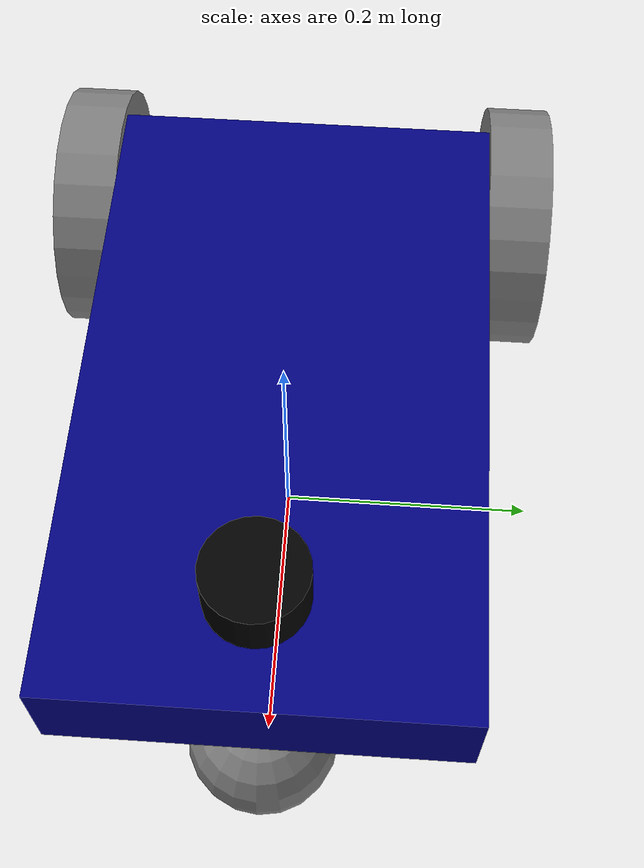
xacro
<?xml version="1.0"?>
<robot xmlns:xacro="http://www.ros.org/wiki/xacro" name="ercole">

    <xacro:arg name="prefix" default=""/>

    <xacro:arg name="model" default=""/>

    <xacro:arg name="use_gazebo" default="true"/>
    <xacro:arg name="use_fake_components" default="true"/>
    <xacro:arg name="use_fixed_wheels" default="true"/>
    <xacro:arg name="use_ros_control" default="true"/>

    <xacro:include filename="common_properties.xacro" />
    <xacro:include filename="mobile_base.xacro" />
    <xacro:include filename="lidar.xacro" />

    <xacro:include filename="ercole.gazebo.xacro" />

    <!-- Import Ercole ros2_control description  -->
    <xacro:include filename="ercole.ros2_control.xacro" />

    <xacro:if value="$(arg use_gazebo)">
        <xacro:ercole_gazebo model="$(arg model)" prefix="$(arg prefix)" />
    </xacro:if>

    <xacro:if value="$(arg use_ros_control)">
        <xacro:ercole_ros2_control model="$(arg model)" prefix="$(arg prefix)"/>
    </xacro:if>

</robot>

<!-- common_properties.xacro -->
<robot xmlns:xacro="http://www.ros.org/wiki/xacro">

    <material name="grey">
        <color rgba="0.5 0.5 0.5 1" />
    </material>

    <material name="blue">
        <color rgba="0 0 0.5 1" />
    </material>

    <material name="black">
        <color rgba="0 0 0 1" />
    </material>

    <xacro:macro name="box_inertia" params="m l w h xyz rpy">
        <inertial>
            <origin xyz="${xyz}" rpy="${rpy}" />
            <mass value="${m}" />
            <inertia ixx="${(m/12) * (h*h + l*l)}" ixy="0" ixz="0"
                     iyy="${(m/12) * (w*w + l*l)}" iyz="0"
                     izz="${(m/12) * (w*w + h*h)}" />

        </inertial>
    </xacro:macro>

    <xacro:macro name="cylinder_inertia" params="m r h xyz rpy">
        <inertial>
            <origin xyz="${xyz}" rpy="${rpy}" />
            <mass value="${m}" />
            <inertia ixx="${(m/12) * (3*r*r + h*h)}" ixy="0" ixz="0"
                      iyy="${(m/12) * (3*r*r + h*h)}" iyz="0"
                      izz="${(m/12) * (r*r)}" />
        </inertial>
    </xacro:macro>

    <xacro:macro name="sphere_inertia" params="m r xyz rpy">
        <inertial>
            <origin xyz="${xyz}" rpy="${rpy}" />
            <mass value="${m}" />
            <inertia ixx="${(2/5) * m * r * r}" ixy="0" ixz="0"
                     iyy="${(2/5) * m * r * r}" iyz="0"
                     izz="${(2/5) * m * r * r}" />
        </inertial>
    </xacro:macro>

</robot>

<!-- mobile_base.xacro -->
<robot xmlns:xacro="http://www.ros.org/wiki/xacro">

    <xacro:property name="base_length" value="0.5" />
    <xacro:property name="base_width" value="0.3" />
    <xacro:property name="base_height" value="0.08" />
    <xacro:property name="wheel_radius" value="0.1" />
    <xacro:property name="wheel_length" value="0.05" />
    <xacro:property name="caster_wheel_radius" value="0.055" />

    <!-- base_footprint (projection of base_link on the ground) -->

    <link name="base_footprint"/>

    <joint name="base_joint" type="fixed">
        <parent link="base_footprint"/>
        <child link="base_link"/>
        <origin xyz="0 0 0.15" rpy="0 0 0"/>
    </joint>

    <!-- base_link and base_scan (required for Nav2) -->

    <link name="base_link">
        <visual>
            <geometry>
                <box size="${base_length} ${base_width} ${base_height}" />
            </geometry>
            <origin xyz="0 0 0" rpy="0 0 0" />
            <material name="blue" />
        </visual>
        <collision>
            <geometry>
                <box size="${base_length} ${base_width} ${base_height}" />
            </geometry>
            <origin xyz="0 0 0" rpy="0 0 0" />
        </collision>

        <xacro:box_inertia m="10.0" l="${2*base_length}" w="${2*base_width}" h="${2*base_height}"
                           xyz="0 0 0" rpy="0 0 0" />
    </link>

    <link name="caster_wheel_link">
        <visual>
            <geometry>
                <sphere radius="${caster_wheel_radius}" />
            </geometry>
            <origin xyz="0 0 0" rpy="0 0 0" />
            <material name="grey" />
        </visual>
        <collision>
            <geometry>
                <sphere radius="${caster_wheel_radius}" />
            </geometry>
            <origin xyz="0 0 0" rpy="0 0 0" />
        </collision>
        <xacro:sphere_inertia m="0.5" r="${2*caster_wheel_radius / 2.0}"
                              xyz="0 0 0" rpy="0 0 0" />
    </link>

    <gazebo reference="caster_wheel_link">
        <material>Gazebo/Grey</material>
        <mu1 value="0.001"/>
        <mu2 value="0.001"/>
    </gazebo>

    <!-- Wheels (2 differential wheels and caster wheel) -->

    <xacro:macro name="wheel_link" params="prefix">
        <link name="${prefix}_wheel">
            <visual>
                <geometry>
                    <cylinder radius="${wheel_radius}" length="${wheel_length}"/>
                </geometry>
                <origin xyz="0 0 0" rpy="${pi /2.0} 0 0" />
                <material name="grey" />
            </visual>
            <collision>
                <geometry>
                    <cylinder radius="${wheel_radius}" length="${wheel_length}"/>
                </geometry>
                <origin xyz="0 0 0" rpy="${pi /2.0} 0 0" />
            </collision>
            <xacro:cylinder_inertia m="0.5" r="${2*wheel_radius}" h="${2*wheel_length}"
                                    xyz="0 0 0" rpy="${pi /2.0} 0 0" />
        </link>
    </xacro:macro>

    <joint name="base_rl_wheel_joint" type="continuous">
        <parent link="base_link"/>
        <child link="rl_wheel"/>
        <origin xyz="-0.225 ${(base_width + wheel_length) / 2.0} -0.05" rpy="0 0 0"/>
        <axis xyz="0 1 0"/>
    </joint>

    <xacro:wheel_link prefix="rl" />

    <joint name="base_rr_wheel_joint" type="continuous">
        <parent link="base_link"/>
        <child link="rr_wheel"/>
        <origin xyz="-0.225  ${-(base_width + wheel_length) / 2.0} -0.05" rpy="0 0 0"/>
        <axis xyz="0 1 0"/>
    </joint>

    <xacro:wheel_link prefix="rr" />

    <joint name="base_caster_wheel_joint" type="fixed">
        <parent link="base_link" />
        <child link="caster_wheel_link" />
        <origin xyz="0.225 0 -0.095" rpy="0 0 0" />
    </joint>

</robot>

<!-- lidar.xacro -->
<robot xmlns:xacro="http://www.ros.org/wiki/xacro">

    <joint name="laser_joint" type="fixed">
        <parent link="base_link"/>
        <child link="laser_frame"/>
        <origin xyz="0.195 0 0.12" rpy="0 0 0"/>
    </joint>

    <link name="laser_frame">

        <visual>
            <geometry>
                <cylinder radius="0.035" length="0.04"/>
            </geometry>
            <origin xyz="0 0 0" rpy="0 0 0" />
            <material name="black" />
        </visual>
        <collision>
            <geometry>
                <cylinder radius="0.035" length="0.04"/>
            </geometry>
        </collision>
        <xacro:cylinder_inertia m="0.1" r="0.035" h="0.04" xyz="0 0 0" rpy="0 0 0"/>

    </link>

    <gazebo reference="laser_frame">
        <material>Gazebo/Black</material>

        <sensor name="laser" type="ray">
            <pose> 0 0 0 0 0 0 </pose>
            <visualize>false</visualize>
            <update_rate>10</update_rate>
            <ray>
                <scan>
                    <horizontal>
                        <samples>360</samples>
                        <min_angle>-3.14</min_angle>
                        <max_angle>3.14</max_angle>
                    </horizontal>
                </scan>
                <range>
                    <min>0.3</min>
                    <max>16</max>
                </range>
            </ray>
            <plugin name="laser_controller" filename="libgazebo_ros_ray_sensor.so">
                <ros>
                    <argument>~/out:=scan</argument>
                </ros>
                <output_type>sensor_msgs/LaserScan</output_type>
                <frame_name>laser_frame</frame_name>
            </plugin>
        </sensor>
    </gazebo>

</robot>
